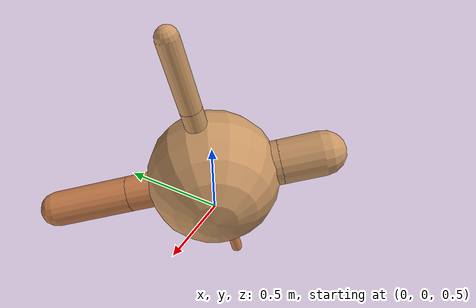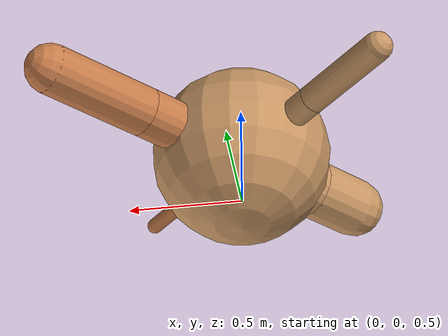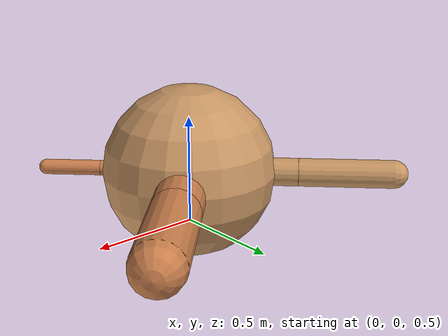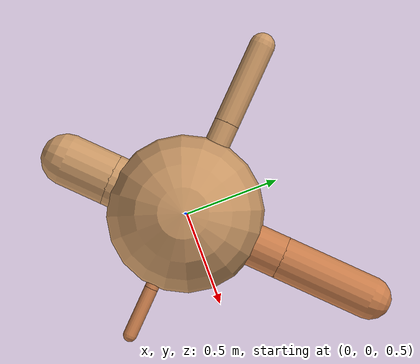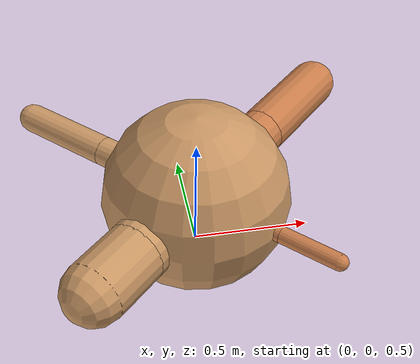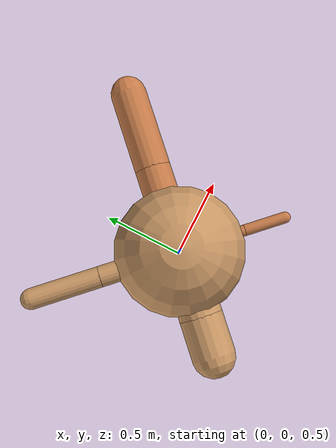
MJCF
<?xml version="1.0" ?>
<mujoco model="ant">

	<compiler angle="degree" coordinate="local" inertiafromgeom="true"/>

	<option integrator="RK4" timestep="0.01"/>

	<custom>

		<numeric data="0.0 0.0 0.55 1.0 0.0 0.0 0.0 0.0 1.0 0.0 -1.0 0.0 -1.0 0.0 1.0" name="init_qpos"/>

	</custom>

	<default>

		<joint armature="1" damping="1" limited="true"/>

		<geom conaffinity="0" condim="3" density="5.0" friction="1.5 0.1 0.1" margin="0.01" rgba="0.8 0.6 0.4 1"/>

	</default>

	<worldbody>

		<body name="torso" pos="0 0 0.75">

			<geom name="torso_geom" pos="0 0 0" size="0.3973585688252719" type="sphere"/>

			<!--joint armature="0" damping="0" limited="false" margin="0.01" name="root" pos="0 0 0" type="free"/-->

			<body name="front_left_leg" pos="0 0 0">

				<geom fromto="0 0 0 0.2 0.2 0" name="aux_1_geom" size="0.10965447908362114" type="capsule" rgba=".8 .5 .3 1"/>

				<body name="aux_1" pos="0.2 0.2 0">

					<joint axis="0 0 1" name="hip_1" pos="0.0 0.0 0.0" range="-40 40" type="hinge"/>

					<geom fromto="0 0 0 0.17209177377852938 0.17209177377852938 0" name="left_leg_geom" size="0.10965447908362114" type="capsule" rgba=".8 .5 .3 1"/>

					<body pos="0.17209177377852938 0.17209177377852938 0" name="front_left_foot">

						<joint axis="-1 1 0" name="ankle_1" pos="0.0 0.0 0.0" range="30 100" type="hinge"/>

						<geom fromto="0 0 0 0.34418354755705877 0.34418354755705877 0" name="left_ankle_geom" size="0.10965447908362114" type="capsule" rgba=".8 .5 .3 1"/>

					</body>

				</body>

			</body>

			<body name="front_right_leg" pos="0 0 0">

				<geom fromto="0 0 0 -0.2 0.2 0" name="aux_2_geom" size="0.06473420567659466" type="capsule"/>

				<body name="aux_2" pos="-0.2 0.2 0">

					<joint axis="0 0 1" name="hip_2" pos="0.0 0.0 0.0" range="-40 40" type="hinge"/>

					<geom fromto="0 0 0 -0.1524767985250803 0.1524767985250803 0" name="right_leg_geom" size="0.06473420567659466" type="capsule"/>

					<body pos="-0.1524767985250803 0.1524767985250803 0" name="front_right_foot">

						<joint axis="1 1 0" name="ankle_2" pos="0.0 0.0 0.0" range="-100 -30" type="hinge"/>

						<geom fromto="0 0 0 -0.3049535970501606 0.3049535970501606 0" name="right_ankle_geom" size="0.06473420567659466" type="capsule"/>

					</body>

				</body>

			</body>

			<body name="left_back_leg" pos="0 0 0">

				<geom fromto="0 0 0 -0.2 -0.2 0" name="aux_3_geom" size="0.1323378776885587" type="capsule"/>

				<body name="aux_3" pos="-0.2 -0.2 0">

					<joint axis="0 0 1" name="hip_3" pos="0.0 0.0 0.0" range="-40 40" type="hinge"/>

					<geom fromto="0 0 0 -0.0869928236114384 -0.0869928236114384 0" name="back_leg_geom" size="0.1323378776885587" type="capsule"/>

					<body pos="-0.0869928236114384 -0.0869928236114384 0" name="left_back_foot">

						<joint axis="-1 1 0" name="ankle_3" pos="0.0 0.0 0.0" range="-100 -30" type="hinge"/>

						<geom fromto="0 0 0 -0.1739856472228768 -0.1739856472228768 0" name="third_ankle_geom" size="0.1323378776885587" type="capsule"/>

					</body>

				</body>

			</body>

			<body name="right_back_leg" pos="0 0 0">

				<geom fromto="0 0 0 0.2 -0.2 0" name="aux_4_geom" size="0.03495740361716379" type="capsule" rgba=".8 .5 .3 1"/>

				<body name="aux_4" pos="0.2 -0.2 0">

					<joint axis="0 0 1" name="hip_4" pos="0.0 0.0 0.0" range="-40 40" type="hinge"/>

					<geom fromto="0 0 0 0.09031511455490598 -0.09031511455490598 0" name="rightback_leg_geom" size="0.03495740361716379" type="capsule" rgba=".8 .5 .3 1"/>

					<body pos="0.09031511455490598 -0.09031511455490598 0" name="right_back_foot">

						<joint axis="1 1 0" name="ankle_4" pos="0.0 0.0 0.0" range="30 100" type="hinge"/>

						<geom fromto="0 0 0 0.18063022910981197 -0.18063022910981197 0" name="fourth_ankle_geom" size="0.03495740361716379" type="capsule" rgba=".8 .5 .3 1"/>

					</body>

				</body>

			</body>

		</body>

	</worldbody>

	<actuator>

		<motor ctrllimited="true" ctrlrange="-1.0 1.0" joint="hip_4" gear="150"/>

		<motor ctrllimited="true" ctrlrange="-1.0 1.0" joint="ankle_4" gear="150"/>

		<motor ctrllimited="true" ctrlrange="-1.0 1.0" joint="hip_1" gear="150"/>

		<motor ctrllimited="true" ctrlrange="-1.0 1.0" joint="ankle_1" gear="150"/>

		<motor ctrllimited="true" ctrlrange="-1.0 1.0" joint="hip_2" gear="150"/>

		<motor ctrllimited="true" ctrlrange="-1.0 1.0" joint="ankle_2" gear="150"/>

		<motor ctrllimited="true" ctrlrange="-1.0 1.0" joint="hip_3" gear="150"/>

		<motor ctrllimited="true" ctrlrange="-1.0 1.0" joint="ankle_3" gear="150"/>

	</actuator>

</mujoco>
